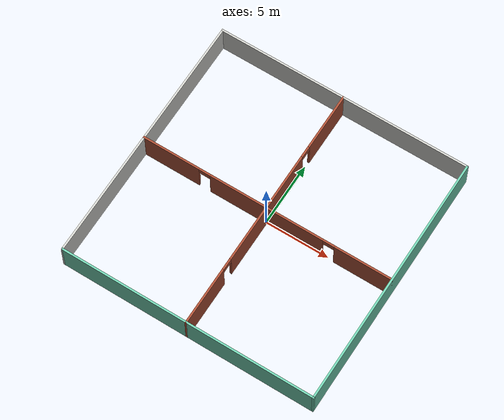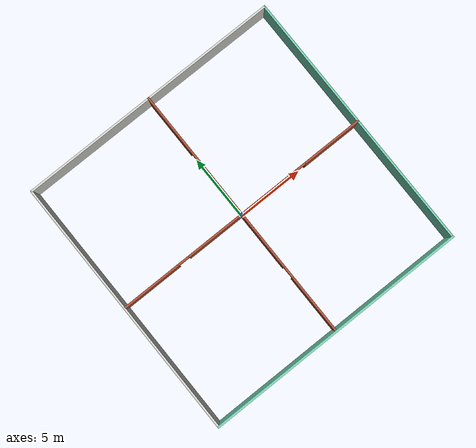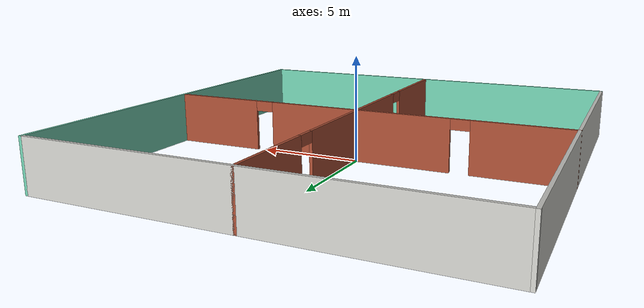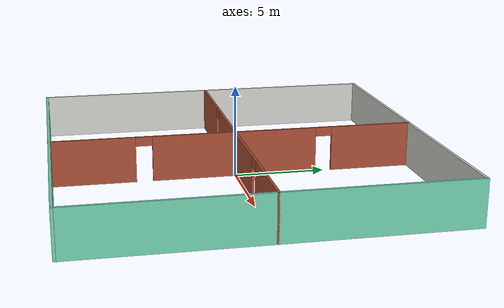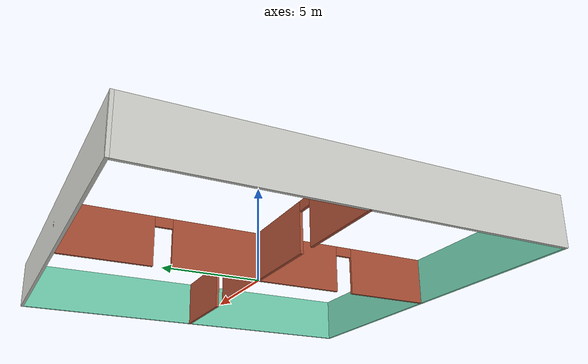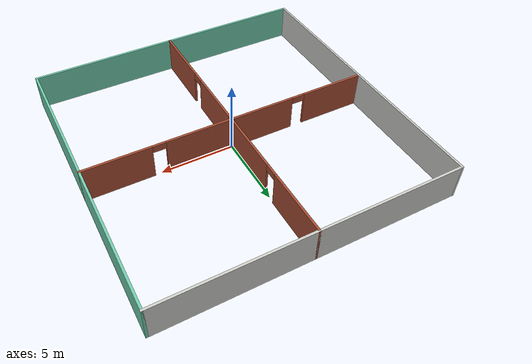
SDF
<?xml version='1.0'?>
<sdf version='1.7'>
  <model name='building'>
    <pose>0 0 0 0 -0 0</pose>
    <link name='Wall_10'>
      <collision name='Wall_10_Collision'>
        <geometry>
          <box>
            <size>20.15 0.15 2.5</size>
          </box>
        </geometry>
        <pose>0 0 1.25 0 -0 0</pose>
      </collision>
      <visual name='Wall_10_Visual'>
        <pose>0 0 1.25 0 -0 0</pose>
        <geometry>
          <box>
            <size>20.15 0.15 2.5</size>
          </box>
        </geometry>
        <material>
          <script>
            <uri>file://media/materials/scripts/gazebo.material</uri>
            <name>Gazebo/CeilingTiled</name>
          </script>
          <ambient>0.435294 0.796078 0.67451 1</ambient>
        </material>
        <meta>
          <layer>0</layer>
        </meta>
      </visual>
      <pose>0 10 0 0 -0 0</pose>
    </link>
    <link name='Wall_12'>
      <pose>0 0 0 0 -0 -1.5708</pose>
      <visual name='Wall_12_Visual_0'>
        <pose>-7.7625 0 1.25 0 -0 0</pose>
        <geometry>
          <box>
            <size>4.625 0.15 2.5</size>
          </box>
        </geometry>
        <material>
          <script>
            <uri>file://media/materials/scripts/gazebo.material</uri>
            <name>Gazebo/Bricks</name>
          </script>
          <ambient>0.996078 0.47451 0.0196078 1</ambient>
        </material>
        <meta>
          <layer>0</layer>
        </meta>
      </visual>
      <collision name='Wall_12_Collision_0'>
        <geometry>
          <box>
            <size>4.625 0.15 2.5</size>
          </box>
        </geometry>
        <pose>-7.7625 0 1.25 0 -0 0</pose>
      </collision>
      <visual name='Wall_12_Visual_1'>
        <pose>0 0 1.25 0 -0 0</pose>
        <geometry>
          <box>
            <size>9.1 0.15 2.5</size>
          </box>
        </geometry>
        <material>
          <script>
            <uri>file://media/materials/scripts/gazebo.material</uri>
            <name>Gazebo/Bricks</name>
          </script>
          <ambient>0.996078 0.47451 0.0196078 1</ambient>
        </material>
        <meta>
          <layer>0</layer>
        </meta>
      </visual>
      <collision name='Wall_12_Collision_1'>
        <geometry>
          <box>
            <size>9.1 0.15 2.5</size>
          </box>
        </geometry>
        <pose>0 0 1.25 0 -0 0</pose>
      </collision>
      <visual name='Wall_12_Visual_2'>
        <pose>7.7625 0 1.25 0 -0 0</pose>
        <geometry>
          <box>
            <size>4.625 0.15 2.5</size>
          </box>
        </geometry>
        <material>
          <script>
            <uri>file://media/materials/scripts/gazebo.material</uri>
            <name>Gazebo/Bricks</name>
          </script>
          <ambient>0.996078 0.47451 0.0196078 1</ambient>
        </material>
        <meta>
          <layer>0</layer>
        </meta>
      </visual>
      <collision name='Wall_12_Collision_2'>
        <geometry>
          <box>
            <size>4.625 0.15 2.5</size>
          </box>
        </geometry>
        <pose>7.7625 0 1.25 0 -0 0</pose>
      </collision>
      <visual name='Wall_12_Visual_3'>
        <pose>-5 0 2.25 0 -0 0</pose>
        <geometry>
          <box>
            <size>0.9 0.15 0.5</size>
          </box>
        </geometry>
        <material>
          <script>
            <uri>file://media/materials/scripts/gazebo.material</uri>
            <name>Gazebo/Bricks</name>
          </script>
          <ambient>0.996078 0.47451 0.0196078 1</ambient>
        </material>
        <meta>
          <layer>0</layer>
        </meta>
      </visual>
      <collision name='Wall_12_Collision_3'>
        <geometry>
          <box>
            <size>0.9 0.15 0.5</size>
          </box>
        </geometry>
        <pose>-5 0 2.25 0 -0 0</pose>
      </collision>
      <visual name='Wall_12_Visual_4'>
        <pose>5 0 2.25 0 -0 0</pose>
        <geometry>
          <box>
            <size>0.9 0.15 0.5</size>
          </box>
        </geometry>
        <material>
          <script>
            <uri>file://media/materials/scripts/gazebo.material</uri>
            <name>Gazebo/Bricks</name>
          </script>
          <ambient>0.996078 0.47451 0.0196078 1</ambient>
        </material>
        <meta>
          <layer>0</layer>
        </meta>
      </visual>
      <collision name='Wall_12_Collision_4'>
        <geometry>
          <box>
            <size>0.9 0.15 0.5</size>
          </box>
        </geometry>
        <pose>5 0 2.25 0 -0 0</pose>
      </collision>
    </link>
    <link name='Wall_2'>
      <pose>0 0 0 0 -0 0</pose>
      <visual name='Wall_2_Visual_0'>
        <pose>-7.7625 0 1.25 0 -0 0</pose>
        <geometry>
          <box>
            <size>4.625 0.15 2.5</size>
          </box>
        </geometry>
        <material>
          <script>
            <uri>file://media/materials/scripts/gazebo.material</uri>
            <name>Gazebo/Bricks</name>
          </script>
          <ambient>0.996078 0.47451 0.0196078 1</ambient>
        </material>
        <meta>
          <layer>0</layer>
        </meta>
      </visual>
      <collision name='Wall_2_Collision_0'>
        <geometry>
          <box>
            <size>4.625 0.15 2.5</size>
          </box>
        </geometry>
        <pose>-7.7625 0 1.25 0 -0 0</pose>
      </collision>
      <visual name='Wall_2_Visual_1'>
        <pose>0 0 1.25 0 -0 0</pose>
        <geometry>
          <box>
            <size>9.1 0.15 2.5</size>
          </box>
        </geometry>
        <material>
          <script>
            <uri>file://media/materials/scripts/gazebo.material</uri>
            <name>Gazebo/Bricks</name>
          </script>
          <ambient>0.996078 0.47451 0.0196078 1</ambient>
        </material>
        <meta>
          <layer>0</layer>
        </meta>
      </visual>
      <collision name='Wall_2_Collision_1'>
        <geometry>
          <box>
            <size>9.1 0.15 2.5</size>
          </box>
        </geometry>
        <pose>0 0 1.25 0 -0 0</pose>
      </collision>
      <visual name='Wall_2_Visual_2'>
        <pose>7.7625 0 1.25 0 -0 0</pose>
        <geometry>
          <box>
            <size>4.625 0.15 2.5</size>
          </box>
        </geometry>
        <material>
          <script>
            <uri>file://media/materials/scripts/gazebo.material</uri>
            <name>Gazebo/Bricks</name>
          </script>
          <ambient>0.996078 0.47451 0.0196078 1</ambient>
        </material>
        <meta>
          <layer>0</layer>
        </meta>
      </visual>
      <collision name='Wall_2_Collision_2'>
        <geometry>
          <box>
            <size>4.625 0.15 2.5</size>
          </box>
        </geometry>
        <pose>7.7625 0 1.25 0 -0 0</pose>
      </collision>
      <visual name='Wall_2_Visual_3'>
        <pose>-5 0 2.25 0 -0 0</pose>
        <geometry>
          <box>
            <size>0.9 0.15 0.5</size>
          </box>
        </geometry>
        <material>
          <script>
            <uri>file://media/materials/scripts/gazebo.material</uri>
            <name>Gazebo/Bricks</name>
          </script>
          <ambient>0.996078 0.47451 0.0196078 1</ambient>
        </material>
        <meta>
          <layer>0</layer>
        </meta>
      </visual>
      <collision name='Wall_2_Collision_3'>
        <geometry>
          <box>
            <size>0.9 0.15 0.5</size>
          </box>
        </geometry>
        <pose>-5 0 2.25 0 -0 0</pose>
      </collision>
      <visual name='Wall_2_Visual_4'>
        <pose>5 0 2.25 0 -0 0</pose>
        <geometry>
          <box>
            <size>0.9 0.15 0.5</size>
          </box>
        </geometry>
        <material>
          <script>
            <uri>file://media/materials/scripts/gazebo.material</uri>
            <name>Gazebo/Bricks</name>
          </script>
          <ambient>0.996078 0.47451 0.0196078 1</ambient>
        </material>
        <meta>
          <layer>0</layer>
        </meta>
      </visual>
      <collision name='Wall_2_Collision_4'>
        <geometry>
          <box>
            <size>0.9 0.15 0.5</size>
          </box>
        </geometry>
        <pose>5 0 2.25 0 -0 0</pose>
      </collision>
    </link>
    <link name='Wall_4'>
      <collision name='Wall_4_Collision'>
        <geometry>
          <box>
            <size>20.15 0.15 2.5</size>
          </box>
        </geometry>
        <pose>0 0 1.25 0 -0 0</pose>
      </collision>
      <visual name='Wall_4_Visual'>
        <pose>0 0 1.25 0 -0 0</pose>
        <geometry>
          <box>
            <size>20.15 0.15 2.5</size>
          </box>
        </geometry>
        <material>
          <script>
            <uri>file://media/materials/scripts/gazebo.material</uri>
            <name>Gazebo/CeilingTiled</name>
          </script>
          <ambient>0.435294 0.796078 0.67451 1</ambient>
        </material>
        <meta>
          <layer>0</layer>
        </meta>
      </visual>
      <pose>-10 0 0 0 -0 -1.5708</pose>
    </link>
    <link name='Wall_6'>
      <collision name='Wall_6_Collision'>
        <geometry>
          <box>
            <size>20.15 0.15 2.5</size>
          </box>
        </geometry>
        <pose>0 0 1.25 0 -0 0</pose>
      </collision>
      <visual name='Wall_6_Visual'>
        <pose>0 0 1.25 0 -0 0</pose>
        <geometry>
          <box>
            <size>20.15 0.15 2.5</size>
          </box>
        </geometry>
        <material>
          <script>
            <uri>file://media/materials/scripts/gazebo.material</uri>
            <name>Gazebo/Grey</name>
          </script>
          <ambient>0.435294 0.796078 0.67451 1</ambient>
        </material>
        <meta>
          <layer>0</layer>
        </meta>
      </visual>
      <pose>10 0 0 0 -0 -1.5708</pose>
    </link>
    <link name='Wall_8'>
      <collision name='Wall_8_Collision'>
        <geometry>
          <box>
            <size>20.15 0.15 2.5</size>
          </box>
        </geometry>
        <pose>0 0 1.25 0 -0 0</pose>
      </collision>
      <visual name='Wall_8_Visual'>
        <pose>0 0 1.25 0 -0 0</pose>
        <geometry>
          <box>
            <size>20.15 0.15 2.5</size>
          </box>
        </geometry>
        <material>
          <script>
            <uri>file://media/materials/scripts/gazebo.material</uri>
            <name>Gazebo/Grey</name>
          </script>
          <ambient>0.435294 0.796078 0.67451 1</ambient>
        </material>
        <meta>
          <layer>0</layer>
        </meta>
      </visual>
      <pose>0 -10 0 0 -0 0</pose>
    </link>
    <static>1</static>
  </model>
</sdf>
